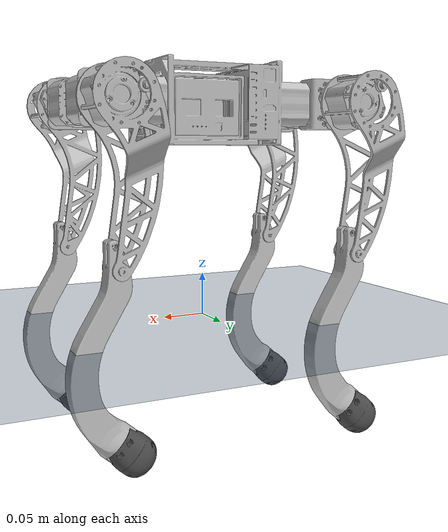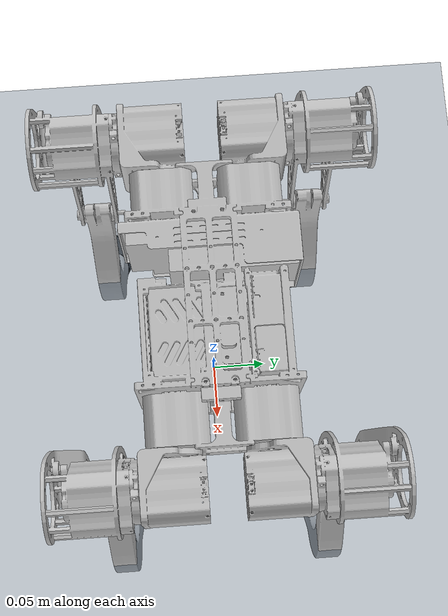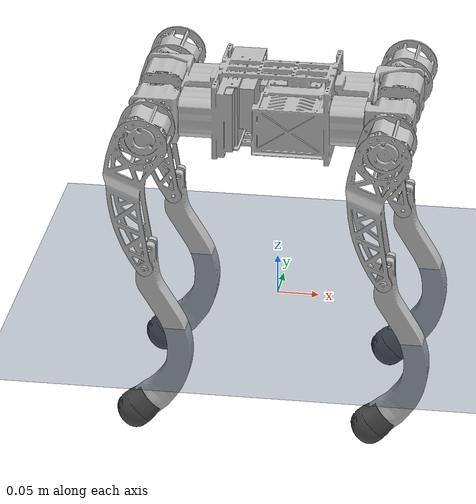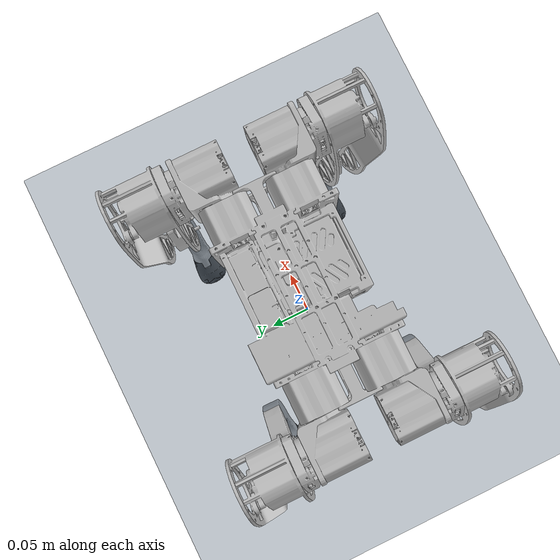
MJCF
<mujoco model="HTDW_5036 scene flat">
  <include file="HTDW_5036.xml"/>

  <statistic center="0 0 0.1" extent="0.8"/>

  <visual>
    <headlight diffuse="0.6 0.6 0.6" ambient="0.3 0.3 0.3" specular="0 0 0"/>
    <rgba haze="0.15 0.25 0.35 1"/>
    <global azimuth="-130" elevation="-20"/>
  </visual>

  <asset>
    <texture type="skybox" builtin="gradient" rgb1="0.3 0.5 0.7" rgb2="0 0 0" width="512" height="3072"/>
    <texture type="2d" name="groundplane" builtin="checker" mark="edge" rgb1="0.2 0.3 0.4" rgb2="0.1 0.2 0.3" markrgb="0.8 0.8 0.8" width="300" height="300"/>
    <material name="groundplane" texture="groundplane" texuniform="true" texrepeat="5 5" reflectance="0.2"/>
  </asset>

  <worldbody>
    <light pos="0 0 1.5" dir="0 0 -1" directional="true"/>
    <geom name="floor" size="0 0 0.05" type="plane" material="groundplane" contype="1" conaffinity="1"/>
  </worldbody>

  <sensor>
    <contact name="FL_foot_contact" geom1="floor" geom2="FL" data="force" num="1" reduce="mindist"/>
    <contact name="FR_foot_contact" geom1="floor" geom2="FR" data="force" num="1" reduce="mindist"/>
    <contact name="RL_foot_contact" geom1="floor" geom2="RL" data="force" num="1" reduce="mindist"/>
    <contact name="RR_foot_contact" geom1="floor" geom2="RR" data="force" num="1" reduce="mindist"/>

    <contact name="base_contact" geom1="floor" geom2="base_collision" data="found" num="1" reduce="mindist"/>

    <contact name="FL_hip_contact" geom1="floor" geom2="FL_hip_geom" data="found" num="1" reduce="mindist"/>
    <contact name="FR_hip_contact" geom1="floor" geom2="FR_hip_geom" data="found" num="1" reduce="mindist"/>
    <contact name="RL_hip_contact" geom1="floor" geom2="RL_hip_geom" data="found" num="1" reduce="mindist"/>
    <contact name="RR_hip_contact" geom1="floor" geom2="RR_hip_geom" data="found" num="1" reduce="mindist"/>

    <contact name="FL_thigh_contact" geom1="floor" geom2="FL_thigh_geom" data="found" num="1" reduce="mindist"/>
    <contact name="FR_thigh_contact" geom1="floor" geom2="FR_thigh_geom" data="found" num="1" reduce="mindist"/>
    <contact name="RL_thigh_contact" geom1="floor" geom2="RL_thigh_geom" data="found" num="1" reduce="mindist"/>
    <contact name="RR_thigh_contact" geom1="floor" geom2="RR_thigh_geom" data="found" num="1" reduce="mindist"/>

    <contact name="FL_calf_contact" geom1="floor" geom2="FL_calf_geom" data="found" num="1" reduce="mindist"/>
    <contact name="FR_calf_contact" geom1="floor" geom2="FR_calf_geom" data="found" num="1" reduce="mindist"/>
    <contact name="RL_calf_contact" geom1="floor" geom2="RL_calf_geom" data="found" num="1" reduce="mindist"/>
    <contact name="RR_calf_contact" geom1="floor" geom2="RR_calf_geom" data="found" num="1" reduce="mindist"/>
  </sensor>

  <keyframe>
    <key name="home" qpos="
        0 0 0.25  1 0 0 0
        0 0.9 -1.8
        0 0.9 -1.8
        0 0.9 -1.8
        0 0.9 -1.8"
      ctrl="
        0 0.9 -1.8
        0 0.9 -1.8
        0 0.9 -1.8
        0 0.9 -1.8"/>
  </keyframe>
</mujoco>

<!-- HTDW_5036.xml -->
<mujoco model="HTDW_5036">
  <compiler angle="radian" meshdir="../meshes/"/>
  <size njmax="500" nconmax="100"/>

  <option integrator="implicitfast" noslip_iterations="3">
    <flag contact="enable"/>
  </option>

  <asset>
    <mesh name="base_link" file="base_link.STL"/>
    <mesh name="FL_hip" file="FL_hip.STL"/>
    <mesh name="FL_thigh" file="FL_thigh.STL"/>
    <mesh name="FL_calf" file="FL_calf.STL"/>
    <mesh name="FL_foot" file="FL_foot.STL"/>
    <mesh name="FR_hip" file="FR_hip.STL"/>
    <mesh name="FR_thigh" file="FR_thigh.STL"/>
    <mesh name="FR_calf" file="FR_calf.STL"/>
    <mesh name="FR_foot" file="FR_foot.STL"/>
    <mesh name="RL_hip" file="RL_hip.STL"/>
    <mesh name="RL_thigh" file="RL_thigh.STL"/>
    <mesh name="RL_calf" file="RL_calf.STL"/>
    <mesh name="RL_foot" file="RL_foot.STL"/>
    <mesh name="RR_hip" file="RR_hip.STL"/>
    <mesh name="RR_thigh" file="RR_thigh.STL"/>
    <mesh name="RR_calf" file="RR_calf.STL"/>
    <mesh name="RR_foot" file="RR_foot.STL"/>
  </asset>

  <default>
    <default class="htdw_5036">
      <joint limited="true" damping="0.2" frictionloss="0.05" armature="0.008419"/>
      <geom contype="1" conaffinity="1" friction="0.6 0.005 0.0001" margin="0.001" condim="1" solref="0.01 1"/>
    </default>
  </default>

  <worldbody>
    <body name="base_link" pos="0 0 0.25" quat="1 0 0 0" childclass="htdw_5036">
      <joint name="float_base" type="free" limited="false"/>
      <inertial pos="-0.003236 0.000885 -0.001813" mass="2.659586" fullinertia="0.003792 0.014468 0.016548 0.00013 0.000175 -5e-05"/>
      <site name="imu" pos="0 0 0"/>
      <geom type="mesh" contype="0" conaffinity="0" group="1" rgba="0.752941 0.752941 0.752941 1" mesh="base_link"/>
      <geom name="base_collision" type="mesh" contype="1" conaffinity="2" friction="0 0 0" group="3" rgba="0.8 0.8 0.8 1" mesh="base_link"/>

      <body name="FL_hip" pos="0.14215 0.035 0">
        <inertial pos="-0.002051 0.009463 -0.000144" mass="0.384243" fullinertia="0.000101 0.000104 0.00011 2e-06 1e-06 0.0"/>
        <joint name="FL_hip_joint" axis="1 0 0" range="-0.53 0.53"/>
        <geom type="mesh" contype="0" conaffinity="0" group="1" rgba="0.752941 0.752941 0.752941 1" mesh="FL_hip"/>
        <geom name="FL_hip_geom" type="mesh" contype="1" conaffinity="2" friction="0 0 0" group="3" rgba="0.8 0.8 0.8 1" mesh="FL_hip"/>
        <body name="FL_thigh" pos="0 0.0649 0">
          <inertial pos="-0.002275 0.002996 -0.013672" mass="0.475" fullinertia="0.000882 0.000854 0.000201 7e-06 -6.3e-05 4e-06"/>
          <joint name="FL_thigh_joint" axis="0 1 0" range="-1.57 3.49"/>
          <geom type="mesh" contype="0" conaffinity="0" group="1" rgba="0.752941 0.752941 0.752941 1" mesh="FL_thigh"/>
          <geom name="FL_thigh_geom" type="mesh" contype="1" conaffinity="2" friction="0 0 0" group="3" rgba="0.8 0.8 0.8 1" mesh="FL_thigh"/>
          <body name="FL_calf" pos="0 0 -0.17">
            <inertial pos="0.019619 0.0 -0.090905" mass="0.185104" fullinertia="0.000731 0.000773 5.8e-05 0.0 8.1e-05 0.0"/>
            <joint name="FL_calf_joint" axis="0 1 0" range="-2.43 -1.298"/>
            <geom type="mesh" contype="0" conaffinity="0" group="1" rgba="0.752941 0.752941 0.752941 1" mesh="FL_calf"/>
            <geom name="FL_calf_geom" type="mesh" contype="1" conaffinity="2" friction="0 0 0" group="3" rgba="0.8 0.8 0.8 1" mesh="FL_calf"/>
            <body name="FL_foot" pos="-0.0144485951312854 0 -0.196399042450557">
              <inertial pos="0.000415 -0.000258 0.000642" mass="0.051122" fullinertia="1.1e-05 1.3e-05 1.1e-05 0.0 -1e-06 0.0"/>
              <geom type="mesh" contype="0" conaffinity="0" group="1" rgba="0.298039 0.298039 0.298039 1" mesh="FL_foot"/>
              <geom name="FL" type="sphere" pos="0 0 0" size="0.022" contype="1" conaffinity="2" group="3" priority="1" margin="0.005" condim="6" friction="0.4 0.02 0.01" solref="0.01 1" solimp="0.015 1 0.023" rgba="0.8 0.8 0.8 1"/>
              <site name="FL_foot_site" pos="0 0 0" size="0.01" rgba="0 0 1 0.5"/>
            </body>
          </body>
        </body>
      </body>

      <body name="FR_hip" pos="0.14215 -0.035 0">
        <inertial pos="-0.002051 -0.009463 0.000144" mass="0.384243" fullinertia="0.000101 0.000104 0.00011 -2e-06 -1e-06 0.0"/>
        <joint name="FR_hip_joint" axis="1 0 0" range="-0.53 0.53"/>
        <geom type="mesh" contype="0" conaffinity="0" group="1" rgba="0.752941 0.752941 0.752941 1" mesh="FR_hip"/>
        <geom name="FR_hip_geom" type="mesh" contype="1" conaffinity="2" friction="0 0 0" group="3" rgba="0.8 0.8 0.8 1" mesh="FR_hip"/>
        <body name="FR_thigh" pos="0 -0.0649 0">
          <inertial pos="-0.002505 -0.002996 -0.013547" mass="0.475" fullinertia="0.000885 0.000855 0.0002 -6e-06 -6e-05 -3e-06"/>
          <joint name="FR_thigh_joint" axis="0 1 0" range="-1.57 3.49"/>
          <geom type="mesh" contype="0" conaffinity="0" group="1" rgba="0.752941 0.752941 0.752941 1" mesh="FR_thigh"/>
          <geom name="FR_thigh_geom" type="mesh" contype="1" conaffinity="2" friction="0 0 0" group="3" rgba="0.8 0.8 0.8 1" mesh="FR_thigh"/>
          <body name="FR_calf" pos="0 0 -0.17">
            <inertial pos="0.019619 0.0 -0.090905" mass="0.185104" fullinertia="0.000731 0.000773 5.8e-05 0.0 8.1e-05 0.0"/>
            <joint name="FR_calf_joint" axis="0 1 0" range="-2.43 -1.298"/>
            <geom type="mesh" contype="0" conaffinity="0" group="1" rgba="0.752941 0.752941 0.752941 1" mesh="FR_calf"/>
            <geom name="FR_calf_geom" type="mesh" contype="1" conaffinity="2" friction="0 0 0" group="3" rgba="0.8 0.8 0.8 1" mesh="FR_calf"/>
            <body name="FR_foot" pos="-0.014449 0 -0.1964">
              <inertial pos="0.000415 -0.000258 0.000643" mass="0.051122" fullinertia="1.1e-05 1.3e-05 1.1e-05 0.0 -1e-06 0.0"/>
              <geom type="mesh" contype="0" conaffinity="0" group="1" rgba="0.298039 0.298039 0.298039 1" mesh="FR_foot"/>
              <geom name="FR" type="sphere" pos="0 0 0" size="0.022" contype="1" conaffinity="2" group="3" priority="1" margin="0.005" condim="6" friction="0.4 0.02 0.01" solref="0.01 1" solimp="0.015 1 0.023" rgba="0.8 0.8 0.8 1"/>
              <site name="FR_foot_site" pos="0 0 0" size="0.01" rgba="0 0 1 0.5"/>
            </body>
          </body>
        </body>
      </body>

      <body name="RL_hip" pos="-0.14215 0.035 0">
        <inertial pos="0.002051 0.009463 0.000144" mass="0.384243" fullinertia="0.000101 0.000104 0.00011 -2e-06 1e-06 0.0"/>
        <joint name="RL_hip_joint" axis="1 0 0" range="-0.53 0.53"/>
        <geom type="mesh" contype="0" conaffinity="0" group="1" rgba="0.752941 0.752941 0.752941 1" mesh="RL_hip"/>
        <geom name="RL_hip_geom" type="mesh" contype="1" conaffinity="2" friction="0 0 0" group="3" rgba="0.8 0.8 0.8 1" mesh="RL_hip"/>
        <body name="RL_thigh" pos="0 0.0649 0">
          <inertial pos="-0.002152 0.002996 -0.013502" mass="0.475" fullinertia="0.000887 0.000857 0.000199 5e-06 -6.3e-05 2e-06"/>
          <joint name="RL_thigh_joint" axis="0 1 0" range="-1.57 3.49"/>
          <geom type="mesh" contype="0" conaffinity="0" group="1" rgba="0.752941 0.752941 0.752941 1" mesh="RL_thigh"/>
          <geom name="RL_thigh_geom" type="mesh" contype="1" conaffinity="2" friction="0 0 0" group="3" rgba="0.8 0.8 0.8 1" mesh="RL_thigh"/>
          <body name="RL_calf" pos="0 0 -0.17">
            <inertial pos="0.019619 0.0 -0.090905" mass="0.185104" fullinertia="0.000731 0.000773 5.8e-05 0.0 8.1e-05 0.0"/>
            <joint name="RL_calf_joint" axis="0 1 0" range="-2.43 -1.298"/>
            <geom type="mesh" contype="0" conaffinity="0" group="1" rgba="0.752941 0.752941 0.752941 1" mesh="RL_calf"/>
            <geom name="RL_calf_geom" type="mesh" contype="1" conaffinity="2" friction="0 0 0" group="3" rgba="0.8 0.8 0.8 1" mesh="RL_calf"/>
            <body name="RL_foot" pos="-0.0144485645043519 0 -0.196399042137075">
              <inertial pos="0.000415 -0.000258 0.000642" mass="0.051122" fullinertia="1.1e-05 1.3e-05 1.1e-05 0.0 -1e-06 0.0"/>
              <geom type="mesh" contype="0" conaffinity="0" group="1" rgba="0.298039 0.298039 0.298039 1" mesh="RL_foot"/>
              <geom name="RL" type="sphere" pos="0 0 0" size="0.022" contype="1" conaffinity="2" group="3" priority="1" margin="0.005" condim="6" friction="0.4 0.02 0.01" solref="0.01 1" solimp="0.015 1 0.023" rgba="0.8 0.8 0.8 1"/>
              <site name="RL_foot_site" pos="0 0 0" size="0.01" rgba="0 0 1 0.5"/>
            </body>
          </body>
        </body>
      </body>

      <body name="RR_hip" pos="-0.14215 -0.035 0">
        <inertial pos="0.002051 -0.009463 -0.000144" mass="0.384243" fullinertia="0.000101 0.000104 0.00011 2e-06 -1e-06 0.0"/>
        <joint name="RR_hip_joint" axis="1 0 0" range="-0.53 0.53"/>
        <geom type="mesh" contype="0" conaffinity="0" group="1" rgba="0.752941 0.752941 0.752941 1" mesh="RR_hip"/>
        <geom name="RR_hip_geom" type="mesh" contype="1" conaffinity="2" friction="0 0 0" group="3" rgba="0.8 0.8 0.8 1" mesh="RR_hip"/>
        <body name="RR_thigh" pos="0 -0.0649 0">
          <inertial pos="-0.002505 -0.002996 -0.013547" mass="0.475" fullinertia="0.000885 0.000855 0.0002 -6e-06 -6e-05 -3e-06"/>
          <joint name="RR_thigh_joint" axis="0 1 0" range="-1.57 3.49"/>
          <geom type="mesh" contype="0" conaffinity="0" group="1" rgba="0.752941 0.752941 0.752941 1" mesh="RR_thigh"/>
          <geom name="RR_thigh_geom" type="mesh" contype="1" conaffinity="2" friction="0 0 0" group="3" rgba="0.8 0.8 0.8 1" mesh="RR_thigh"/>
          <body name="RR_calf" pos="0 0 -0.17">
            <inertial pos="0.019619 0.0 -0.090905" mass="0.185104" fullinertia="0.000731 0.000773 5.8e-05 0.0 8.1e-05 0.0"/>
            <joint name="RR_calf_joint" axis="0 1 0" range="-2.43 -1.298"/>
            <geom type="mesh" contype="0" conaffinity="0" group="1" rgba="0.752941 0.752941 0.752941 1" mesh="RR_calf"/>
            <geom name="RR_calf_geom" type="mesh" contype="1" conaffinity="2" friction="0 0 0" group="3" rgba="0.8 0.8 0.8 1" mesh="RR_calf"/>
            <body name="RR_foot" pos="-0.0144485645043577 0 -0.196399042137075">
              <inertial pos="0.000415 -0.000258 0.000643" mass="0.051122" fullinertia="1.1e-05 1.3e-05 1.1e-05 0.0 -1e-06 0.0"/>
              <geom type="mesh" contype="0" conaffinity="0" group="1" rgba="0.298039 0.298039 0.298039 1" mesh="RR_foot"/>
              <geom name="RR" type="sphere" pos="0 0 0" size="0.022" contype="1" conaffinity="2" group="3" priority="1" margin="0.005" condim="6" friction="0.4 0.02 0.01" solref="0.01 1" solimp="0.015 1 0.023" rgba="0.8 0.8 0.8 1"/>
              <site name="RR_foot_site" pos="0 0 0" size="0.01" rgba="0 0 1 0.5"/>
            </body>
          </body>
        </body>
      </body>

    </body>
  </worldbody>

  <actuator>
    <position name="FL_hip_joint" joint="FL_hip_joint" kp="10" kv="0.3" ctrllimited="true" ctrlrange="-0.53 0.53" forcelimited="true" forcerange="-21 21"/>
    <position name="FL_thigh_joint" joint="FL_thigh_joint" kp="10" kv="0.3" ctrllimited="true" ctrlrange="-1.57 3.49" forcelimited="true" forcerange="-21 21"/>
    <position name="FL_calf_joint" joint="FL_calf_joint" kp="10" kv="0.3" ctrllimited="true" ctrlrange="-2.43 -1.298" forcelimited="true" forcerange="-21 21"/>
    <position name="FR_hip_joint" joint="FR_hip_joint" kp="10" kv="0.3" ctrllimited="true" ctrlrange="-0.53 0.53" forcelimited="true" forcerange="-21 21"/>
    <position name="FR_thigh_joint" joint="FR_thigh_joint" kp="10" kv="0.3" ctrllimited="true" ctrlrange="-1.57 3.49" forcelimited="true" forcerange="-21 21"/>
    <position name="FR_calf_joint" joint="FR_calf_joint" kp="10" kv="0.3" ctrllimited="true" ctrlrange="-2.43 -1.298" forcelimited="true" forcerange="-21 21"/>
    <position name="RL_hip_joint" joint="RL_hip_joint" kp="10" kv="0.3" ctrllimited="true" ctrlrange="-0.53 0.53" forcelimited="true" forcerange="-21 21"/>
    <position name="RL_thigh_joint" joint="RL_thigh_joint" kp="10" kv="0.3" ctrllimited="true" ctrlrange="-1.57 3.49" forcelimited="true" forcerange="-21 21"/>
    <position name="RL_calf_joint" joint="RL_calf_joint" kp="10" kv="0.3" ctrllimited="true" ctrlrange="-2.43 -1.298" forcelimited="true" forcerange="-21 21"/>
    <position name="RR_hip_joint" joint="RR_hip_joint" kp="10" kv="0.3" ctrllimited="true" ctrlrange="-0.53 0.53" forcelimited="true" forcerange="-21 21"/>
    <position name="RR_thigh_joint" joint="RR_thigh_joint" kp="10" kv="0.3" ctrllimited="true" ctrlrange="-1.57 3.49" forcelimited="true" forcerange="-21 21"/>
    <position name="RR_calf_joint" joint="RR_calf_joint" kp="10" kv="0.3" ctrllimited="true" ctrlrange="-2.43 -1.298" forcelimited="true" forcerange="-21 21"/>
  </actuator>

  <sensor>
    <actuatorpos name='FR_hip_joint_p' actuator='FR_hip_joint' user='13'/>
    <actuatorpos name='FR_thigh_joint_p' actuator='FR_thigh_joint' user='13'/>
    <actuatorpos name='FR_calf_joint_p' actuator='FR_calf_joint' user='13'/>
    <actuatorpos name='FL_hip_joint_p' actuator='FL_hip_joint' user='13'/>
    <actuatorpos name='FL_thigh_joint_p' actuator='FL_thigh_joint' user='13'/>
    <actuatorpos name='FL_calf_joint_p' actuator='FL_calf_joint' user='13'/>
    <actuatorpos name='RR_hip_joint_p' actuator='RR_hip_joint' user='13'/>
    <actuatorpos name='RR_thigh_joint_p' actuator='RR_thigh_joint' user='13'/>
    <actuatorpos name='RR_calf_joint_p' actuator='RR_calf_joint' user='13'/>
    <actuatorpos name='RL_hip_joint_p' actuator='RL_hip_joint' user='13'/>
    <actuatorpos name='RL_thigh_joint_p' actuator='RL_thigh_joint' user='13'/>
    <actuatorpos name='RL_calf_joint_p' actuator='RL_calf_joint' user='13'/>

    <actuatorvel name='FR_hip_joint_v' actuator='FR_hip_joint' user='13'/>
    <actuatorvel name='FR_thigh_joint_v' actuator='FR_thigh_joint' user='13'/>
    <actuatorvel name='FR_calf_joint_v' actuator='FR_calf_joint' user='13'/>
    <actuatorvel name='FL_hip_joint_v' actuator='FL_hip_joint' user='13'/>
    <actuatorvel name='FL_thigh_joint_v' actuator='FL_thigh_joint' user='13'/>
    <actuatorvel name='FL_calf_joint_v' actuator='FL_calf_joint' user='13'/>
    <actuatorvel name='RR_hip_joint_v' actuator='RR_hip_joint' user='13'/>
    <actuatorvel name='RR_thigh_joint_v' actuator='RR_thigh_joint' user='13'/>
    <actuatorvel name='RR_calf_joint_v' actuator='RR_calf_joint' user='13'/>
    <actuatorvel name='RL_hip_joint_v' actuator='RL_hip_joint' user='13'/>
    <actuatorvel name='RL_thigh_joint_v' actuator='RL_thigh_joint' user='13'/>
    <actuatorvel name='RL_calf_joint_v' actuator='RL_calf_joint' user='13'/>

    <actuatorfrc name='FR_hip_joint_f' actuator='FR_hip_joint' user='13' noise='1e-3'/>
    <actuatorfrc name='FR_thigh_joint_f' actuator='FR_thigh_joint' user='13' noise='1e-3'/>
    <actuatorfrc name='FR_calf_joint_f' actuator='FR_calf_joint' user='13' noise='1e-3'/>
    <actuatorfrc name='FL_hip_joint_f' actuator='FL_hip_joint' user='13' noise='1e-3'/>
    <actuatorfrc name='FL_thigh_joint_f' actuator='FL_thigh_joint' user='13' noise='1e-3'/>
    <actuatorfrc name='FL_calf_joint_f' actuator='FL_calf_joint' user='13' noise='1e-3'/>
    <actuatorfrc name='RR_hip_joint_f' actuator='RR_hip_joint' user='13' noise='1e-3'/>
    <actuatorfrc name='RR_thigh_joint_f' actuator='RR_thigh_joint' user='13' noise='1e-3'/>
    <actuatorfrc name='RR_calf_joint_f' actuator='RR_calf_joint' user='13' noise='1e-3'/>
    <actuatorfrc name='RL_hip_joint_f' actuator='RL_hip_joint' user='13' noise='1e-3'/>
    <actuatorfrc name='RL_thigh_joint_f' actuator='RL_thigh_joint' user='13' noise='1e-3'/>
    <actuatorfrc name='RL_calf_joint_f' actuator='RL_calf_joint' user='13' noise='1e-3'/>

    <framequat name='orientation' objtype='site' noise='0.001' objname='imu'/>
    <framepos name='position' objtype='site' noise='0.001' objname='imu'/>
    <gyro name='gyro' site='imu' noise='0.005' cutoff='34.9'/>
    <velocimeter name='local_linvel' site='imu' noise='0.001' cutoff='30'/>
    <accelerometer name='linear-acceleration' site='imu' noise='0.005' cutoff='157'/>
    <framezaxis name='upvector' objtype='site' objname='imu'/>
    <framepos name='global_position' objtype='site' objname='imu'/>
    <framelinvel name='global_linvel' objtype='site' objname='imu'/>
    <frameangvel name='global_angvel' objtype='site' objname='imu'/>
    <framepos name='FL_pos' objtype='geom' objname='FL'/>
    <framepos name='FR_pos' objtype='geom' objname='FR'/>
    <framepos name='RL_pos' objtype='geom' objname='RL'/>
    <framepos name='RR_pos' objtype='geom' objname='RR'/>
    <framelinvel name='FL_vel' objtype='geom' objname='FL'/>
    <framelinvel name='FR_vel' objtype='geom' objname='FR'/>
    <framelinvel name='RL_vel' objtype='geom' objname='RL'/>
    <framelinvel name='RR_vel' objtype='geom' objname='RR'/>
    <magnetometer name='magnetometer' site='imu'/>
  </sensor>
</mujoco>
